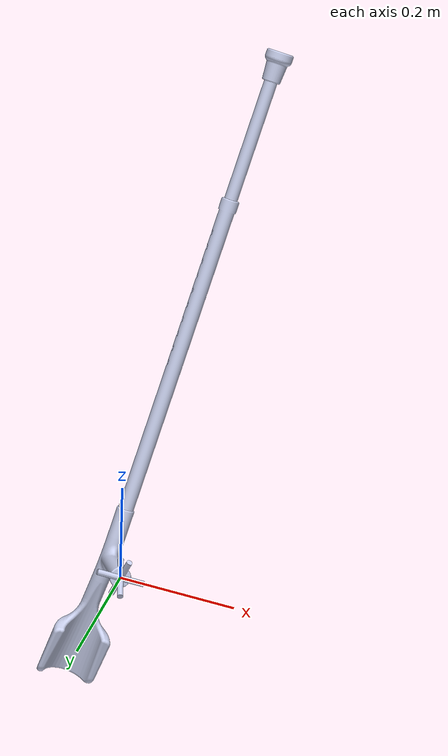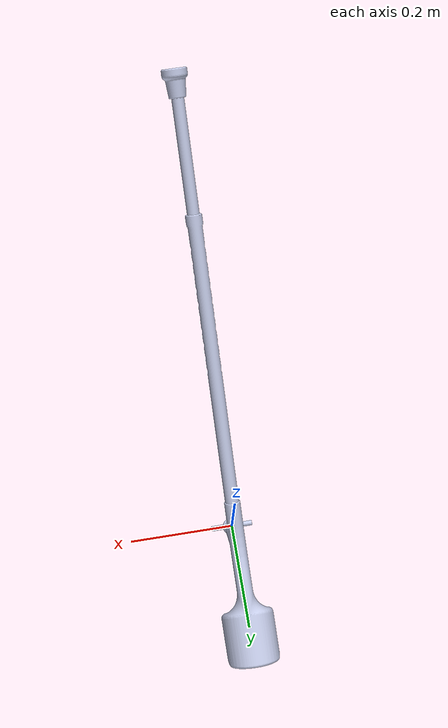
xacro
<?xml version="1.0" ?>
<!-- |    This document was autogenerated by xacro from /home/adminanis/ROS2_FEB_7_2023_ws/install/crutch_sim/share/crutch_sim/urdf/crutch_urdf.urdf | -->
<!-- |    EDITING THIS FILE BY HAND IS NOT RECOMMENDED                                 | -->
<robot name="crutch_urdf">
  <!-- Link: CCU (including IMU and buttons)-->
  <link name="base_link">
    <inertial>
      <origin rpy="0 0 0" xyz="-4.1472642927906E-08 -4.14726429290747E-08 4.14726429294576E-08"/>
      <mass value="0.0174352295619993"/>
      <inertia ixx="6.84104003393333E-06" ixy="2.99998335017809E-17" ixz="-2.99997933744379E-17" iyy="6.84104003393333E-06" iyz="-2.99998149482317E-17" izz="6.84104003393333E-06"/>
    </inertial>
    <visual>
      <origin rpy="0 0 0" xyz="0 0 0"/>
      <geometry>
        <mesh filename="/home/adminanis/ROS2_FEB_7_2023_ws/src/crutch_sim/src/model/base_link.STL"/>
      </geometry>
      <material name="">
        <color rgba="0.792156862745098 0.819607843137255 0.933333333333333 1"/>
      </material>
    </visual>
    <collision>
      <origin rpy="0 0 0" xyz="0 0 0"/>
      <geometry>
        <mesh filename="/home/adminanis/ROS2_FEB_7_2023_ws/src/crutch_sim/src/model/base_link.STL"/>
      </geometry>
    </collision>
  </link>
  <!-- Link: Crutch itself -->
  <link name="Empty_Link">
    <inertial>
      <origin rpy="0 0 0" xyz="-4.1473E-08 -4.1473E-08 4.1473E-08"/>
      <mass value="0.017435"/>
      <inertia ixx="6.841E-06" ixy="3E-17" ixz="-3E-17" iyy="6.841E-06" iyz="-3E-17" izz="6.841E-06"/>
    </inertial>
    <visual>
      <origin rpy="0 0 0" xyz="0 0 0"/>
      <geometry>
        <mesh filename="/home/adminanis/ROS2_FEB_7_2023_ws/src/crutch_sim/src/model/Empty_Link.STL"/>
      </geometry>
      <material name="">
        <color rgba="0.79216 0.81961 0.93333 1"/>
      </material>
    </visual>
    <collision>
      <origin rpy="0 0 0" xyz="0 0 0"/>
      <geometry>
        <mesh filename="/home/adminanis/ROS2_FEB_7_2023_ws/src/crutch_sim/src/model/Empty_Link.STL"/>
      </geometry>
    </collision>
  </link>
  <!-- Link the 2 parts of the joint-->
  <joint name="crutch_joint__imu_position " type="revolute">
    <origin rpy="0 0 0" xyz="0 0 0"/>
    <parent link="base_link"/>
    <child link="Empty_Link"/>
    <axis xyz="1 0 0"/>
    <limit effort="5" lower="1" upper="1" velocity="5"/>
  </joint>
  <!-- Position Config -->
  <ros2_control name="GazeboSimSystem" type="system">
    <hardware>
      <plugin>gazebo_ros2_control/GazeboSystem</plugin>
    </hardware>
    <joint name="crutch_joint__imu_position">
      <command_interface name="velocity">
        <param name="min">-3.14</param>
        <param name="max">3.14</param>
      </command_interface>
      <state_interface name="position"/>
      <state_interface name="velocity"/>
      <state_interface name="effort"/>
    </joint>
  </ros2_control>
  <!-- Specify the path to the YAML path -->
  <gazebo>
    <plugin filename="libgazebo_ros2_control.so" name="gazebo_ros2_control">
      <parameters>/home/adminanis/ROS2_FEB_7_2023_ws/install/crutch_sim/share/crutch_sim/config/crutch_controller_position.yaml</parameters>
    </plugin>
  </gazebo>
</robot>
